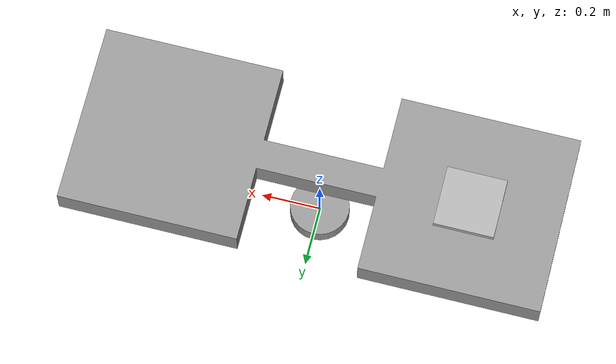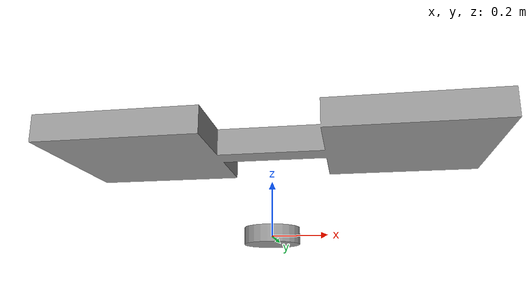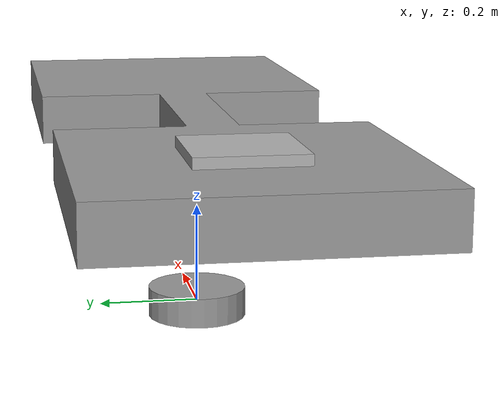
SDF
<?xml version='1.0'?>
<sdf version='1.7'>
  <model name='rotating_plate_with_qr'>
      <link name='link_0'>
        <gravity>1</gravity>
        <inertial>
          <mass>1</mass>
          <inertia>
            <ixx>0.166667</ixx>
            <ixy>0</ixy>
            <ixz>0</ixz>
            <iyy>0.166667</iyy>
            <iyz>0</iyz>
            <izz>0.166667</izz>
          </inertia>
        </inertial>

        <visual name='visual'>

          <pose>0 0 -1.65 0 -0 0</pose>
          <geometry>
            <mesh>
              <uri>model://rotating_plate_with_qr/meshes/rotating_top.stl</uri>
              <scale>1 1 1</scale>
            </mesh>
          </geometry>
          <material>
            <lighting>1</lighting>
            <script>
              <uri>file://media/materials/scripts/gazebo.material</uri>
              <name>Gazebo/Grey</name>
            </script>
            <shader type='pixel'/>
            <emissive>0 0 0 1</emissive>
          </material>
          <transparency>0</transparency>
          <cast_shadows>1</cast_shadows>
        </visual>

        <visual name='visual2'>
          <pose>-0.5 0 0.4 0 -0 0</pose>
          <geometry>
            <box>
              <size>0.2 0.2 0.04</size>
            </box>
          </geometry>
          <material>
            <lighting>1</lighting>
            <script>
              <uri>model://rotating_plate_with_qr/materials/scripts</uri>
              <uri>model://rotating_plate_with_qr/materials/textures</uri>
              <name>Marker</name>
            </script>
            <shader type='pixel'>
              <normal_map>__default__</normal_map>
            </shader>
            <ambient>0.3 0.3 0.3 1</ambient>
            <diffuse>0.7 0.7 0.7 1</diffuse>
            <specular>0.01 0.01 0.01 1</specular>
            <emissive>0 0 0 1</emissive>
          </material>
          <transparency>0</transparency>
          <cast_shadows>1</cast_shadows>
        </visual>

        <collision name='collision'>
          <laser_retro>0</laser_retro>
          <max_contacts>10</max_contacts>
          <pose>0 0 -1.65 0 -0 0</pose>
          <geometry>
            <mesh>
              <uri>model://rotating_plate_with_qr/meshes/rotating_top.stl</uri>
              <scale>1 1 1</scale>
            </mesh>
          </geometry>
          <surface>
            <friction>
              <ode>
                <mu>1</mu>
                <mu2>1</mu2>
                <fdir1>0 0 0</fdir1>
                <slip1>0</slip1>
                <slip2>0</slip2>
              </ode>
              <torsional>
                <coefficient>1</coefficient>
                <patch_radius>0</patch_radius>
                <surface_radius>0</surface_radius>
                <use_patch_radius>1</use_patch_radius>
                <ode>
                  <slip>0</slip>
                </ode>
              </torsional>
            </friction>
          </surface>
        </collision>
      </link>

     <link name='base'>
        <kinematic>0</kinematic>
        <visual name='visual'>
          <pose>0 0 0 0 -0 0</pose>
          <geometry>
            <cylinder>
              <radius>0.1</radius>
              <length>0.06</length>
            </cylinder>
          </geometry>
          <material>
            <lighting>1</lighting>
            <script>
              <uri>file://media/materials/scripts/gazebo.material</uri>
              <name>Gazebo/Grey</name>
            </script>
            <shader type='pixel'>
              <normal_map>__default__</normal_map>
            </shader>
            <ambient>0.3 0.3 0.3 1</ambient>
            <diffuse>0.7 0.7 0.7 1</diffuse>
            <specular>0.01 0.01 0.01 1</specular>
            <emissive>0 0 0 1</emissive>
          </material>
          <transparency>0</transparency>
          <cast_shadows>1</cast_shadows>
        </visual>
        <collision name='collision'>
          <laser_retro>0</laser_retro>
          <max_contacts>10</max_contacts>
          <pose>0 0 0 0 -0 0</pose>
          <geometry>
            <cylinder>
              <radius>0.1</radius>
              <length>0.06</length>
            </cylinder>
          </geometry>
        </collision>
      </link>

      <joint name='link_1_JOINT_0' type='revolute'>
        <parent>base</parent>
        <child>link_0</child>
        <pose>0 0 0 0 -0 0</pose>
        <axis>
          <xyz>0 0 1</xyz>
        </axis>
      </joint>

      <plugin name="rotating_plugin" filename="libRotation_controller.so">
      <maxForce>1000</maxForce>
      <vel>0.2</vel>
      </plugin>
    </model>

</sdf>
